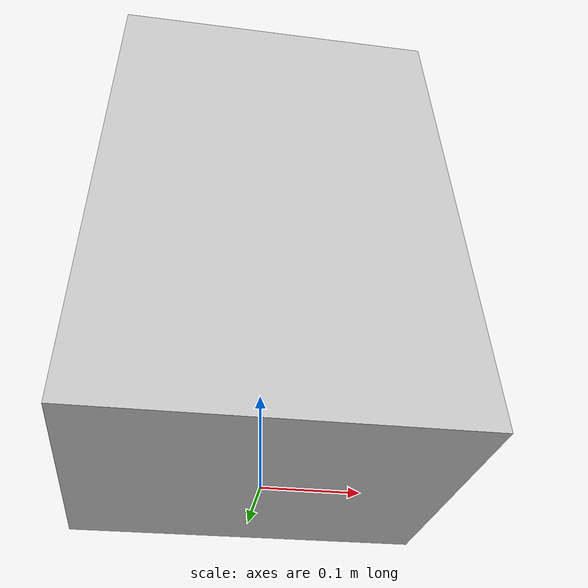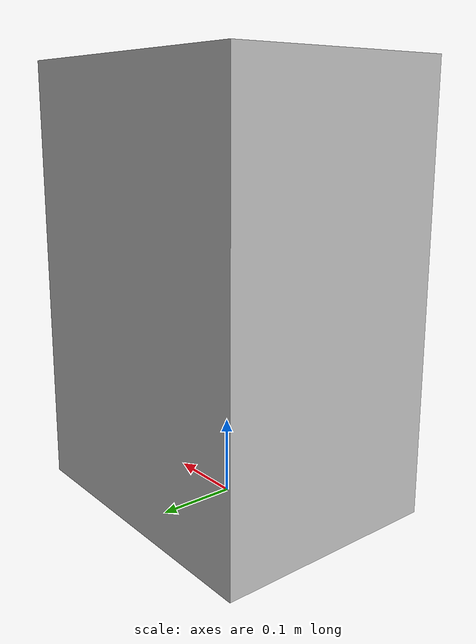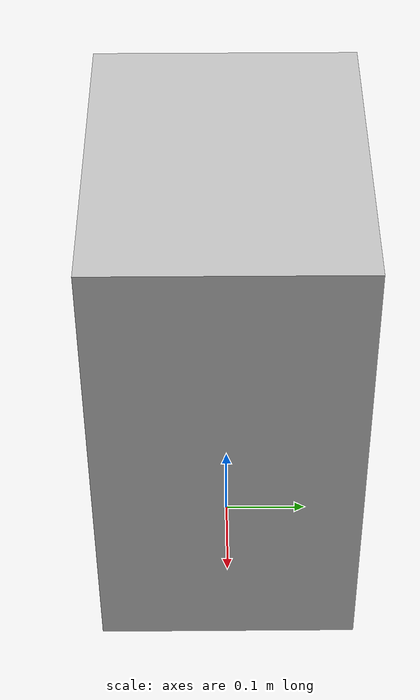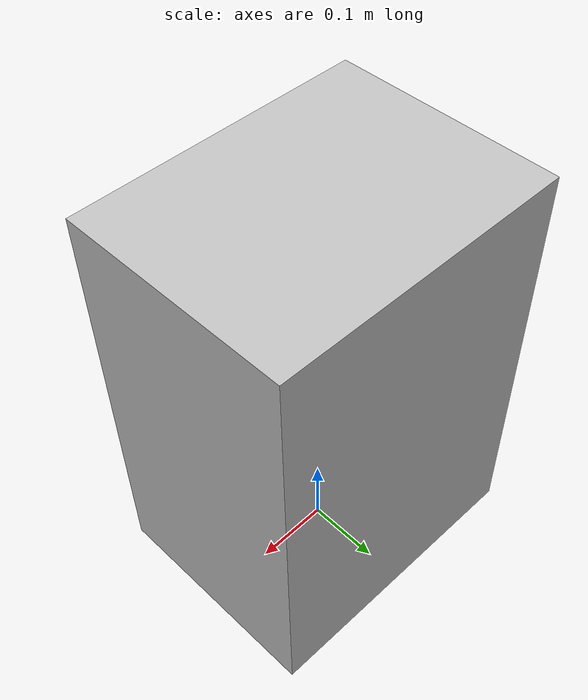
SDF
<?xml version="1.0"?>
<sdf version="1.6">
  <model name="rwc2017/cabinet_desk">
    <link name="1_link">
      <collision name="1_col">
        <geometry>
          <box>
            <size>0.39 0.3 0.56</size>
          </box>
        </geometry>
      </collision>
      <visual name="1_vis">
        <geometry>
          <box>
            <size>0.39 0.3 0.56</size>
          </box>
        </geometry>
        <material>
          <ambient>0.75 0.75 0.75 1</ambient>
        </material>
      </visual>
      <pose>0 0 0.28 0 0 0</pose>
    </link>
    <link name="on_top_of">
      <virtual_volume name="on_top_of_vv">
        <geometry>
          <box>
            <size>0.33 0.24 0.25</size>
          </box>
        </geometry>
        <pose>0.0 0.0 0.705 0 0 0</pose>
      </virtual_volume>
    </link>
    <link name="in_front_of">
      <virtual_volume name="in_front_of_vv">
        <geometry>
          <box>
            <size>0.2 0.1 0.01</size>
          </box>
        </geometry>
        <pose>0.695 0.0 0.005 0 0 0</pose>
      </virtual_volume>
    </link>
    <static>true</static>
  </model>
</sdf>
